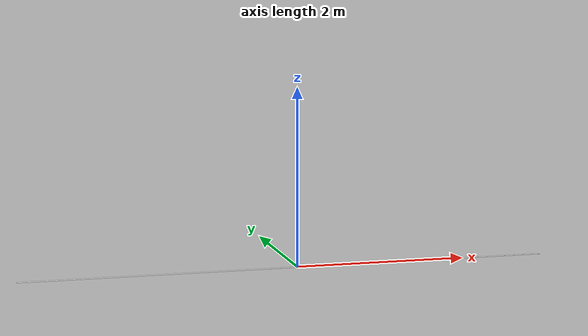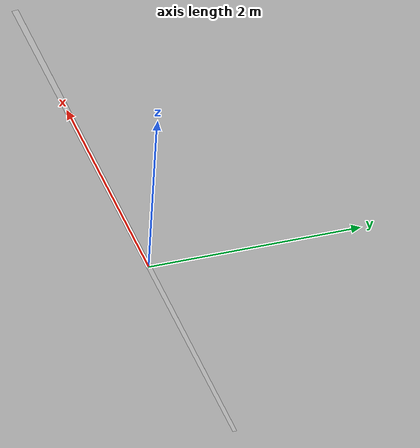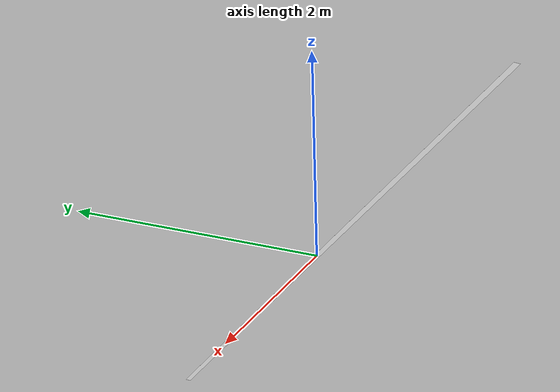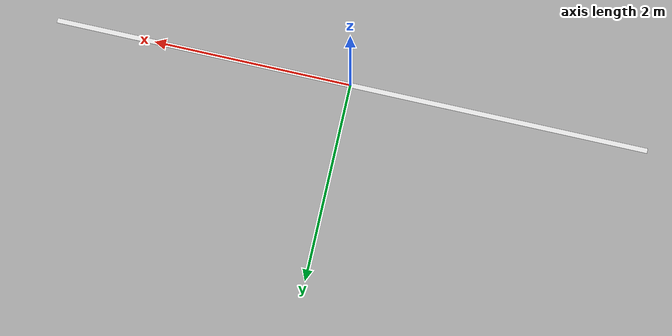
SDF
<?xml version="1.0"?>
<sdf version="1.6">
  <model name="white_line_track">
    <static>true</static>
    <link name="line_link">
      <pose>0 0 0.001 0 0 0</pose>

      <visual name="line_visual">
        <cast_shadows>false</cast_shadows>
        <geometry>
          <box>
            <size>6.0 0.05 0.0001</size>
          </box>
        </geometry>
        <material>
          <ambient>1 1 1 1</ambient>
          <diffuse>1 1 1 1</diffuse>
          <specular>0.1 0.1 0.1 1</specular>
          <emissive>0 0 0 0</emissive>
        </material>
      </visual>

      <!-- Collision yok - tekerlekler takılmasın -->
    </link>
  </model>
</sdf>
